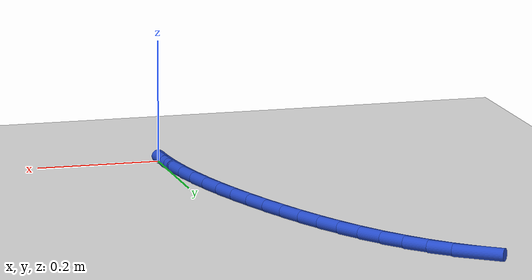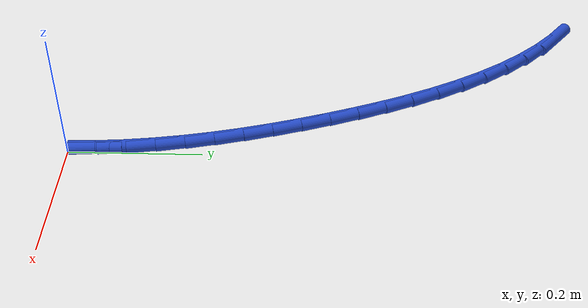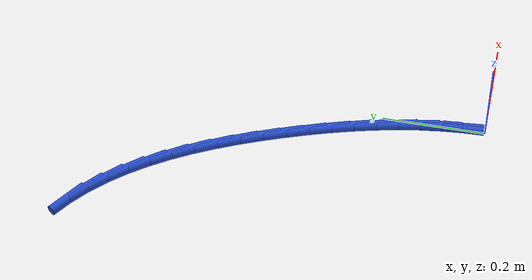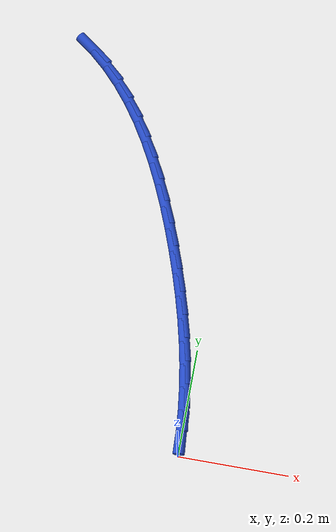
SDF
<sdf version="1.6">
 <world name="default">
  <model name="ground_plane">
   <static>1</static>
   <link name="link">
    <collision name="collision">
     <geometry><plane><normal>0 0 1</normal><size>100 100</size></plane></geometry>
     <surface><friction><ode><mu>100</mu><mu2>50</mu2></ode></friction></surface>
    </collision>
    <visual name="visual">
     <cast_shadows>0</cast_shadows>
     <geometry><plane><normal>0 0 1</normal><size>100 100</size></plane></geometry>
     <material>
      <script><uri>file://media/materials/scripts/gazebo.material</uri><name>Gazebo/WhiteGlow</name></script>
     </material>
    </visual>
   </link>
  </model>
  <model name="line">
   <link name="link_1">
    <pose>-0.0014326370155766216 0.04248514689465583 0.01 0 1.57 -1.4900448950670233</pose>
    <collision name="collision">
     <geometry><cylinder><radius>0.01</radius><length>0.08</length></cylinder></geometry>
    </collision>
    <visual name="visual">
     <material>
      <script><name>Gazebo/Blue</name><uri>file://media/materials/scripts/gazebo.material</uri></script>
     </material>
     <geometry><cylinder><radius>0.01</radius><length>0.08</length></cylinder></geometry>
    </visual>
   </link>
   <link name="link_2">
    <pose>-0.004863285648381987 0.08487682299513721 0.01 0 1.57 -1.4458391523767355</pose>
    <collision name="collision">
     <geometry><cylinder><radius>0.01</radius><length>0.08</length></cylinder></geometry>
    </collision>
    <visual name="visual">
     <material>
      <script><name>Gazebo/Blue</name><uri>file://media/materials/scripts/gazebo.material</uri></script>
     </material>
     <geometry><cylinder><radius>0.01</radius><length>0.08</length></cylinder></geometry>
    </visual>
   </link>
   <link name="link_3">
    <pose>-0.010178372033244888 0.1271904699988892 0.01 0 1.57 -1.4046321092932093</pose>
    <collision name="collision">
     <geometry><cylinder><radius>0.01</radius><length>0.08</length></cylinder></geometry>
    </collision>
    <visual name="visual">
     <material>
      <script><name>Gazebo/Blue</name><uri>file://media/materials/scripts/gazebo.material</uri></script>
     </material>
     <geometry><cylinder><radius>0.01</radius><length>0.08</length></cylinder></geometry>
    </visual>
   </link>
   <link name="link_4">
    <pose>-0.01726432230499409 0.1694415296033568 0.01 0 1.57 -1.3665194220279926</pose>
    <collision name="collision">
     <geometry><cylinder><radius>0.01</radius><length>0.08</length></cylinder></geometry>
    </collision>
    <visual name="visual">
     <material>
      <script><name>Gazebo/Blue</name><uri>file://media/materials/scripts/gazebo.material</uri></script>
     </material>
     <geometry><cylinder><radius>0.01</radius><length>0.08</length></cylinder></geometry>
    </visual>
   </link>
   <link name="link_5">
    <pose>-0.02600756259845842 0.21164544350598505 0.01 0 1.57 -1.3315411912900412</pose>
    <collision name="collision">
     <geometry><cylinder><radius>0.01</radius><length>0.08</length></cylinder></geometry>
    </collision>
    <visual name="visual">
     <material>
      <script><name>Gazebo/Blue</name><uri>file://media/materials/scripts/gazebo.material</uri></script>
     </material>
     <geometry><cylinder><radius>0.01</radius><length>0.08</length></cylinder></geometry>
    </visual>
   </link>
   <link name="link_6">
    <pose>-0.03629451904846665 0.253817653404219 0.01 0 1.57 -1.2996928327638817</pose>
    <collision name="collision">
     <geometry><cylinder><radius>0.01</radius><length>0.08</length></cylinder></geometry>
    </collision>
    <visual name="visual">
     <material>
      <script><name>Gazebo/Blue</name><uri>file://media/materials/scripts/gazebo.material</uri></script>
     </material>
     <geometry><cylinder><radius>0.01</radius><length>0.08</length></cylinder></geometry>
    </visual>
   </link>
   <link name="link_7">
    <pose>-0.0480116177898476 0.2959736009955038 0.01 0 1.57 -1.2709357973583177</pose>
    <collision name="collision">
     <geometry><cylinder><radius>0.01</radius><length>0.08</length></cylinder></geometry>
    </collision>
    <visual name="visual">
     <material>
      <script><name>Gazebo/Blue</name><uri>file://media/materials/scripts/gazebo.material</uri></script>
     </material>
     <geometry><cylinder><radius>0.01</radius><length>0.08</length></cylinder></geometry>
    </visual>
   </link>
   <link name="link_8">
    <pose>-0.061045284957430015 0.3381287279772843 0.01 0 1.57 -1.2452074052400846</pose>
    <collision name="collision">
     <geometry><cylinder><radius>0.01</radius><length>0.08</length></cylinder></geometry>
    </collision>
    <visual name="visual">
     <material>
      <script><name>Gazebo/Blue</name><uri>file://media/materials/scripts/gazebo.material</uri></script>
     </material>
     <geometry><cylinder><radius>0.01</radius><length>0.08</length></cylinder></geometry>
    </visual>
   </link>
   <link name="link_9">
    <pose>-0.07528194668604274 0.38029847604700573 0.01 0 1.57 -1.2213718378517162</pose>
    <collision name="collision">
     <geometry><cylinder><radius>0.01</radius><length>0.08</length></cylinder></geometry>
    </collision>
    <visual name="visual">
     <material>
      <script><name>Gazebo/Blue</name><uri>file://media/materials/scripts/gazebo.material</uri></script>
     </material>
     <geometry><cylinder><radius>0.01</radius><length>0.08</length></cylinder></geometry>
    </visual>
   </link>
   <link name="link_10">
    <pose>-0.09064137325140968 0.42245111007388936 0.01 0 1.57 -1.1942485164224237</pose>
    <collision name="collision">
     <geometry><cylinder><radius>0.01</radius><length>0.08</length></cylinder></geometry>
    </collision>
    <visual name="visual">
     <material>
      <script><name>Gazebo/Blue</name><uri>file://media/materials/scripts/gazebo.material</uri></script>
     </material>
     <geometry><cylinder><radius>0.01</radius><length>0.08</length></cylinder></geometry>
    </visual>
   </link>
   <link name="link_11">
    <pose>-0.10720141545751365 0.4643312353057971 0.01 0 1.57 -1.1619965003583548</pose>
    <collision name="collision">
     <geometry><cylinder><radius>0.01</radius><length>0.08</length></cylinder></geometry>
    </collision>
    <visual name="visual">
     <material>
      <script><name>Gazebo/Blue</name><uri>file://media/materials/scripts/gazebo.material</uri></script>
     </material>
     <geometry><cylinder><radius>0.01</radius><length>0.08</length></cylinder></geometry>
    </visual>
   </link>
   <link name="link_12">
    <pose>-0.12508672304748836 0.5056172436933182 0.01 0 1.57 -1.1241323493664084</pose>
    <collision name="collision">
     <geometry><cylinder><radius>0.01</radius><length>0.08</length></cylinder></geometry>
    </collision>
    <visual name="visual">
     <material>
      <script><name>Gazebo/Blue</name><uri>file://media/materials/scripts/gazebo.material</uri></script>
     </material>
     <geometry><cylinder><radius>0.01</radius><length>0.08</length></cylinder></geometry>
    </visual>
   </link>
   <link name="link_13">
    <pose>-0.14442195294032106 0.545987517034314 0.01 0 1.57 -1.0800650414751405</pose>
    <collision name="collision">
     <geometry><cylinder><radius>0.01</radius><length>0.08</length></cylinder></geometry>
    </collision>
    <visual name="visual">
     <material>
      <script><name>Gazebo/Blue</name><uri>file://media/materials/scripts/gazebo.material</uri></script>
     </material>
     <geometry><cylinder><radius>0.01</radius><length>0.08</length></cylinder></geometry>
    </visual>
   </link>
   <link name="link_14">
    <pose>-0.16533176205499883 0.5851204371266457 0.01 0 1.57 -1.0291121252035573</pose>
    <collision name="collision">
     <geometry><cylinder><radius>0.01</radius><length>0.08</length></cylinder></geometry>
    </collision>
    <visual name="visual">
     <material>
      <script><name>Gazebo/Blue</name><uri>file://media/materials/scripts/gazebo.material</uri></script>
     </material>
     <geometry><cylinder><radius>0.01</radius><length>0.08</length></cylinder></geometry>
    </visual>
   </link>
   <link name="link_15">
    <pose>-0.18794080731050894 0.6226943857681746 0.01 0 1.57 -0.9705330578535908</pose>
    <collision name="collision">
     <geometry><cylinder><radius>0.01</radius><length>0.08</length></cylinder></geometry>
    </collision>
    <visual name="visual">
     <material>
      <script><name>Gazebo/Blue</name><uri>file://media/materials/scripts/gazebo.material</uri></script>
     </material>
     <geometry><cylinder><radius>0.01</radius><length>0.08</length></cylinder></geometry>
    </visual>
   </link>
   <link name="link_16">
    <pose>-0.21237374562583852 0.6583877447567617 0.01 0 1.57 -0.9035911426681943</pose>
    <collision name="collision">
     <geometry><cylinder><radius>0.01</radius><length>0.08</length></cylinder></geometry>
    </collision>
    <visual name="visual">
     <material>
      <script><name>Gazebo/Blue</name><uri>file://media/materials/scripts/gazebo.material</uri></script>
     </material>
     <geometry><cylinder><radius>0.01</radius><length>0.08</length></cylinder></geometry>
    </visual>
   </link>
   <link name="link_17">
    <pose>-0.2387552339199747 0.6918788958902685 0.01 0 1.57 -0.8276574802019446</pose>
    <collision name="collision">
     <geometry><cylinder><radius>0.01</radius><length>0.08</length></cylinder></geometry>
    </collision>
    <visual name="visual">
     <material>
      <script><name>Gazebo/Blue</name><uri>file://media/materials/scripts/gazebo.material</uri></script>
     </material>
     <geometry><cylinder><radius>0.01</radius><length>0.08</length></cylinder></geometry>
    </visual>
   </link>
   <link name="link_18">
    <pose>-0.26720992911190455 0.7228462209665557 0.01 0 1.57 -0.7423672808591342</pose>
    <collision name="collision">
     <geometry><cylinder><radius>0.01</radius><length>0.08</length></cylinder></geometry>
    </collision>
    <visual name="visual">
     <material>
      <script><name>Gazebo/Blue</name><uri>file://media/materials/scripts/gazebo.material</uri></script>
     </material>
     <geometry><cylinder><radius>0.01</radius><length>0.08</length></cylinder></geometry>
    </visual>
   </link>
   <link name="link_19">
    <pose>-0.29786248812061555 0.7509681017834853 0.01 0 1.57 -0.6488356298176874</pose>
    <collision name="collision">
     <geometry><cylinder><radius>0.01</radius><length>0.08</length></cylinder></geometry>
    </collision>
    <visual name="visual">
     <material>
      <script><name>Gazebo/Blue</name><uri>file://media/materials/scripts/gazebo.material</uri></script>
     </material>
     <geometry><cylinder><radius>0.01</radius><length>0.08</length></cylinder></geometry>
    </visual>
   </link>
   <link name="link_161">
    <pose>-0.0014608444224309767 0.04247312105335815 0.01 0 1.57 -1.5364153173012653</pose>
    <collision name="collision">
     <geometry><cylinder><radius>0.01</radius><length>0.08</length></cylinder></geometry>
    </collision>
    <visual name="visual">
     <material>
      <script><name>Gazebo/Blue</name><uri>file://media/materials/scripts/gazebo.material</uri></script>
     </material>
     <geometry><cylinder><radius>0.01</radius><length>0.08</length></cylinder></geometry>
    </visual>
   </link>
  </model>
 </world>
</sdf>
